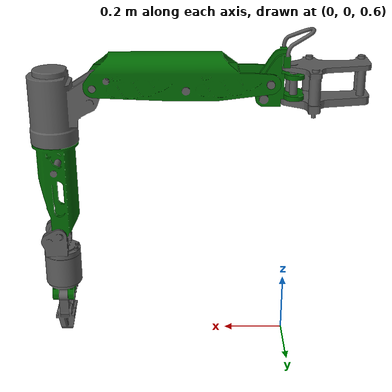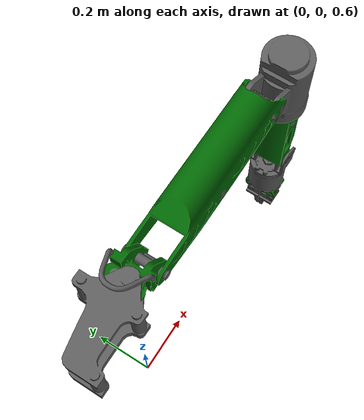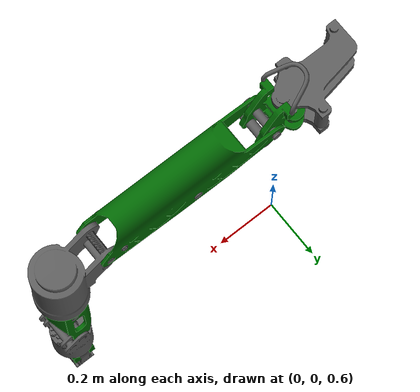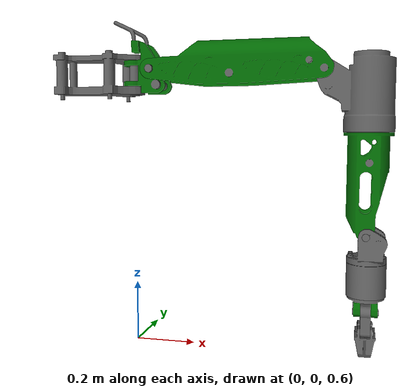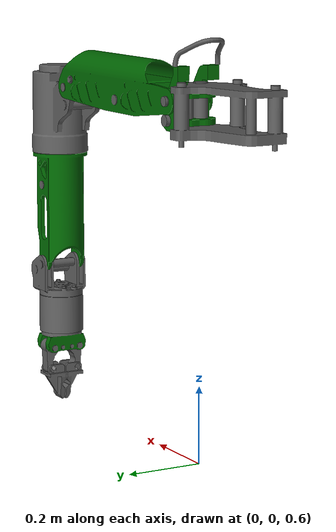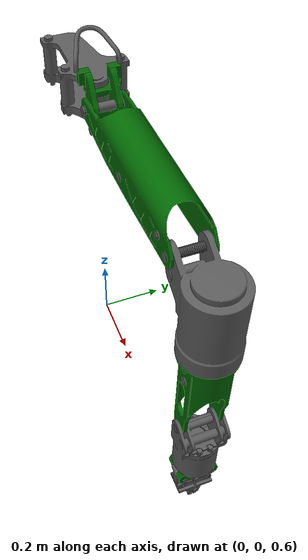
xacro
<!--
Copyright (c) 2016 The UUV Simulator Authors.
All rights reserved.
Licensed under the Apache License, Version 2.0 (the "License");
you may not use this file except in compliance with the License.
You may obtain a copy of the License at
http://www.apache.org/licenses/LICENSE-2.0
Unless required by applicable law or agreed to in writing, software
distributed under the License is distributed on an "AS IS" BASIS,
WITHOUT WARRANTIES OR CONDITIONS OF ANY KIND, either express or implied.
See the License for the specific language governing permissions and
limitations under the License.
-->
<?xml version="1.0"?>
<robot name="oberon7" xmlns:xacro="http://www.ros.org/wiki/xacro">
  <!-- Import serial arm -->
  <xacro:include filename="$(find oberon7_description)/robots/oberon7_default.xacro" />

  <link name="world"/>

  <xacro:oberon7 namespace="" parent="world">
    <origin xyz="0 0 1.5" rpy="0 0 0"/>
  </xacro:oberon7>
</robot>

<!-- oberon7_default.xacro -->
<robot name="oberon7" xmlns:xacro="http://www.ros.org/wiki/xacro">

  <!-- Import serial arm -->
  <xacro:include filename="$(find oberon7_description)/urdf/serial_arm.xacro" />
  <!-- Import Gazebo specific macros -->
  <xacro:include filename="$(find oberon7_description)/urdf/serial_arm.gazebo.xacro" />

  <xacro:macro name="oberon7" params="namespace parent *origin">
    <xacro:oberon7_serial_arm namespace="${namespace}"/>

    <joint name="${namespace}/anchor" type="revolute">
      <parent link="${parent}"/>
      <child link="${namespace}/base"/>
      <xacro:insert_block name="origin"/>
      <axis xyz="0 1 0"/>
      <limit effort="0" lower="0" upper="0" velocity="0"/>
    </joint>
  </xacro:macro>

</robot>

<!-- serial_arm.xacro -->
<robot xmlns:xacro="http://www.ros.org/wiki/xacro">
    <!-- Import arm parameters -->
    <xacro:include filename="$(find oberon7_description)/urdf/parameters/serial_arm.xacro" />

    <!-- Transmission Macro -->

    <!-- Transmission Macro -->
    <xacro:macro name="simple_transmission" params="joint">
      <transmission name="${joint}_trans">
        <type>transmission_interface/SimpleTransmission</type>
        <joint name="${joint}">
          <hardwareInterface>EffortJointInterface</hardwareInterface>
        </joint>
        <actuator name="${joint}_motor">
          <hardwareInterface>EffortJointInterface</hardwareInterface>
          <mechanicalReduction>1</mechanicalReduction>
        </actuator>
      </transmission>
    </xacro:macro>

    <xacro:macro name="oberon7_serial_arm" params="namespace">

        <!-- Ground base -->

        <link name="${namespace}/base">
            <xacro:link_box_inertial mass="${total_mass * base_volume / total_volume_bbox}"
                        width="${base_width}"
                        length="${base_length}"
                        height="${base_height}">
            <origin xyz="${base_com}" rpy="0 0 0"/>
            </xacro:link_box_inertial>

            <visual>
                <origin xyz="0 0 0" rpy="0 0 0"/>
                <geometry>
                    <mesh filename="file://$(find oberon7_description)/meshes/serial_arm/visual/Base.dae"/>
                </geometry>
            </visual>

            <collision>
                <origin xyz="0 0 0" rpy="0 0 0"/>
                <geometry>
                    <mesh filename="file://$(find oberon7_description)/meshes/serial_arm/collision/Base.stl"/>
                </geometry>
            </collision>
        </link>

        <!-- Shoulder link -->

        <link name="${namespace}/shoulder_link">
            <xacro:link_box_inertial mass="${total_mass * shoulder_link_volume / total_volume_bbox}"
                        width="${shoulder_link_width}"
                        length="${shoulder_link_length}"
                        height="${shoulder_link_height}">
                <origin xyz="${shoulder_link_com}" rpy="0 0 0"/>
            </xacro:link_box_inertial>

            <visual>
                <origin xyz="0 0 0" rpy="0 0 0"/>
                <geometry>
                    <mesh filename="file://$(find oberon7_description)/meshes/serial_arm/visual/ShoulderLink.dae"/>
                </geometry>
            </visual>

            <collision>
                <origin xyz="${shoulder_link_com}" rpy="0 0 0"/>
                <geometry>
                    <cylinder radius="${0.5 * shoulder_link_width}" length="${shoulder_link_height}" />
                </geometry>
            </collision>
        </link>

        <joint name="${namespace}/azimuth" type="revolute">
            <parent link="${namespace}/base"/>
            <child link="${namespace}/shoulder_link"/>
            <axis xyz="0 0 1"/>
            <dynamics damping="100" friction="150"/>
            <limit lower="${-60 * d2r}" upper="${60 * d2r}" velocity="0.17" effort="200"/>
        </joint>

        <xacro:simple_transmission joint="${namespace}/azimuth" />

        <!-- UPPER ARM -->

        <link name="${namespace}/upper_arm">
            <xacro:link_box_inertial mass="${total_mass * upper_arm_volume / total_volume_bbox}"
                        width="${upper_arm_width}"
                        length="${upper_arm_length}"
                        height="${upper_arm_height}">
                <origin xyz="${upper_arm_com}" rpy="0 0 0"/>
            </xacro:link_box_inertial>

            <visual>
                <origin xyz="0 0 0" rpy="0 0 0"/>
                <geometry>
                    <mesh filename="file://$(find oberon7_description)/meshes/serial_arm/visual/UpperArm.dae"/>
                </geometry>
            </visual>

            <collision>
                <origin xyz="${upper_arm_com}" rpy="0 ${0.5*pi} 0"/>
                <geometry>
                    <cylinder radius="${0.5 * upper_arm_width}" length="${upper_arm_length}"/>
                </geometry>
            </collision>
        </link>

        <joint name="${namespace}/shoulder" type="revolute">
            <parent link="${namespace}/shoulder_link"/>
            <child link="${namespace}/upper_arm"/>
            <origin xyz="0.06955 0.00015 0.01536" rpy="${0.5*pi} 0 0"/>
            <axis xyz="0 0 1"/>
            <dynamics damping="50" friction="150"/>
            <limit lower="${-90 * d2r}" upper="${90 * d2r}" velocity=".17" effort="5000"/>
        </joint>

        <xacro:simple_transmission joint="${namespace}/shoulder" />

        <!-- ELBOW LINK -->

        <link name="${namespace}/elbow_link">
            <xacro:link_box_inertial mass="${total_mass * elbow_link_volume / total_volume_bbox}"
                        width="${elbow_link_width}"
                        length="${elbow_link_length}"
                        height="${elbow_link_height}">
                <origin xyz="${elbow_link_com}" rpy="0 0 0"/>
            </xacro:link_box_inertial>

            <visual>
                <origin xyz="0 0 0" rpy="0 0 0"/>
                <geometry>
                    <mesh filename="file://$(find oberon7_description)/meshes/serial_arm/visual/ElbowLink.dae"/>
                </geometry>
            </visual>

            <collision>
                <origin xyz="${elbow_link_com}" rpy="0 ${0.5*pi} ${0.5*pi}"/>
                <geometry>
                    <cylinder radius="${0.5 * elbow_link_height}" length="${elbow_link_length}"/>
                </geometry>
            </collision>
        </link>

        <joint name="${namespace}/elbow" type="revolute">
            <parent link="${namespace}/upper_arm"/>
            <child link="${namespace}/elbow_link"/>
            <origin xyz="0.55616 -0.01229 0" rpy="0 0 0"/>
            <dynamics damping="50" friction="150"/>
            <axis xyz="0 0 1"/>
            <limit lower="${-90 * d2r}" upper="${60 * d2r}" velocity=".15" effort="300"/>
        </joint>

        <xacro:simple_transmission joint="${namespace}/elbow" />

        <!-- FOREARM -->

        <link name="${namespace}/forearm">
            <xacro:link_box_inertial mass="${total_mass * forearm_volume / total_volume_bbox}"
                        width="${forearm_width}"
                        length="${forearm_length}"
                        height="${forearm_height}">
                <origin xyz="${forearm_com}" rpy="0 0 0"/>
            </xacro:link_box_inertial>

            <visual>
                <origin xyz="0 0 0" rpy="0 0 0"/>
                <geometry>
                    <mesh filename="file://$(find oberon7_description)/meshes/serial_arm/visual/Forearm.dae"/>
                </geometry>
            </visual>

            <collision>
                <origin xyz="${forearm_com}" rpy="0 0 0"/>
                <geometry>
                    <cylinder radius="${0.5 * forearm_width}" length="${forearm_height}"/>
                </geometry>
            </collision>
        </link>

        <joint name="${namespace}/roll" type="revolute">
            <parent link="${namespace}/elbow_link"/>
            <child link="${namespace}/forearm"/>
            <origin xyz="0.1349014 -0.1936267 0" rpy="${0.5*PI} 0 0"/>
            <axis xyz="0 0 1"/>
            <dynamics damping="300" friction="1000"/>
            <limit lower="${-135 * d2r}" upper="${135 * d2r}" velocity=".25" effort="1000"/>
        </joint>

        <xacro:simple_transmission joint="${namespace}/roll" />

        <!-- WRIST 1  -->

        <link name="${namespace}/wrist_link">
            <xacro:link_box_inertial mass="${total_mass * wrist_volume / total_volume_bbox}"
                        width="${wrist_width}"
                        length="${wrist_length}"
                        height="${wrist_height}">
                <origin xyz="${wrist_com}" rpy="0 0 0"/>
            </xacro:link_box_inertial>

            <visual>
                <origin xyz="0 0 0" rpy="0 0 0"/>
                <geometry>
                    <mesh filename="file://$(find oberon7_description)/meshes/serial_arm/visual/Wrist.dae"/>
                </geometry>
            </visual>

            <collision>
                <origin xyz="${wrist_com}" rpy="0 ${0.5*pi} 0"/>
                <geometry>
                    <cylinder radius="${0.5 * wrist_height}" length="${wrist_length}"/>
                </geometry>
            </collision>
        </link>

        <joint name="${namespace}/pitch" type="revolute">
            <parent link="${namespace}/forearm"/>
            <child link="${namespace}/wrist_link"/>
            <origin xyz="0 0 0.31595760629823427" rpy="${-0.5*PI} ${-0.5*PI} 0"/>
            <axis xyz="0 0 1"/>
            <dynamics damping="10" friction="10"/>
            <limit lower="${-90 * d2r}" upper="${90 * d2r}" velocity=".3" effort="50"/>
        </joint>

        <xacro:simple_transmission joint="${namespace}/pitch" />

        <!-- Adding parallel gripper  -->
        <xacro:include filename="$(find oberon7_description)/urdf/parallel_gripper.xacro" />

        <xacro:oberon7_gazebo_macro namespace="${namespace}"/>
    </xacro:macro>
</robot>

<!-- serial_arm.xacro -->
<robot xmlns:xacro="http://www.ros.org/wiki/xacro">

  <!-- Include parallel gripper's parameters -->
  <xacro:include filename="$(find oberon7_description)/urdf/parameters/parallel_gripper.xacro" />

  <xacro:property name="PI" value="3.1415926535897931"/>
  <xacro:property name="d2r" value="0.017453293" />

  <xacro:macro name="link_box_inertial" params="mass width length height *origin">
      <inertial>
      <xacro:insert_block name="origin"/>
      <mass value="${mass}"/>
      <inertia ixx="${0.083333333 * mass * (width * width + height * height)}" ixy="0.0" ixz="0.0"
               iyy="${0.083333333 * mass * (length * length + height * height)}" iyz="0.0"
               izz="${0.083333333 * mass * (width * width + length * length)}"/>
    </inertial>
  </xacro:macro>

  <xacro:property name="base_width" value="0.198133"/>
  <xacro:property name="base_length" value="0.282087"/>
  <xacro:property name="base_height" value="0.155615"/>
  <xacro:property name="base_volume" value="${base_width * base_length * base_height}" />
  <xacro:property name="base_com" value="-0.101581 -0.001371 -0.009781"/>

  <xacro:property name="shoulder_link_width" value="0.136368"/>
  <xacro:property name="shoulder_link_length" value="0.184936"/>
  <xacro:property name="shoulder_link_height" value="0.239627"/>
  <xacro:property name="shoulder_link_volume" value="${shoulder_link_width * shoulder_link_length * shoulder_link_height}"/>
  <xacro:property name="shoulder_link_com" value="0.039670 0.005441 0.017383"/>

  <xacro:property name="upper_arm_width" value="0.141889"/>
  <xacro:property name="upper_arm_length" value="0.616809"/>
  <xacro:property name="upper_arm_height" value="0.127829"/>
  <xacro:property name="upper_arm_volume" value="${upper_arm_width * upper_arm_length * upper_arm_height}" />
  <xacro:property name="upper_arm_com" value="0.312501 0.017478 -0.000002"/>

  <xacro:property name="elbow_link_width" value="0.243672"/>
  <xacro:property name="elbow_link_length" value="0.245312"/>
  <xacro:property name="elbow_link_height" value="0.155124"/>
  <xacro:property name="elbow_link_volume" value="${elbow_link_width * elbow_link_length * elbow_link_height}" />
  <xacro:property name="elbow_link_com" value="0.125269 -0.074675 0.0"/>

  <xacro:property name="forearm_width" value="0.151455"/>
  <xacro:property name="forearm_length" value="0.151505"/>
  <xacro:property name="forearm_height" value="0.334827"/>
  <xacro:property name="forearm_volume" value="${forearm_width * forearm_length * forearm_height}" />
  <xacro:property name="forearm_com" value="0 0 ${0.5*0.31595760629823427}"/>

  <xacro:property name="wrist_width" value="0.122758"/>
  <xacro:property name="wrist_length" value="0.219204"/>
  <xacro:property name="wrist_height" value="0.130374"/>
  <xacro:property name="wrist_volume" value="${wrist_width * wrist_length * wrist_height}" />
  <xacro:property name="wrist_com" value="0.104016 0.003308 -0.000027"/>

  <!-- Inertial macros for all serial arm links  -->

  <xacro:property name="total_mass" value="54"/>
  <xacro:property name="total_volume" value="0.015564"/>
  <xacro:property name="total_volume_bbox" value="${base_volume +
                                                    shoulder_link_volume +
                                                    upper_arm_volume +
                                                    elbow_link_volume +
                                                    forearm_volume +
                                                    wrist_volume +
                                                    gripper_base_volume +
                                                    2 * finger_volume +
                                                    2 * finger_tip_volume}" />

</robot>

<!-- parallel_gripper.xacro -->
<robot xmlns:xacro="http://www.ros.org/wiki/xacro">

  <xacro:property name="gripper_effort" value="30" />
  <xacro:property name="gripper_velocity" value="0.15" />

  <xacro:property name="gripper_base_width" value="0.117427" />
  <xacro:property name="gripper_base_length" value="0.074326" />
  <xacro:property name="gripper_base_height" value="0.114298" />
  <xacro:property name="gripper_base_volume" value="${gripper_base_width * gripper_base_length * gripper_base_height}"/>
  <xacro:property name="gripper_base_com" value="0.024426 -0.000000 -0.000014" />

  <xacro:property name="finger_width" value="0.052970" />
  <xacro:property name="finger_length" value="0.098653" />
  <xacro:property name="finger_height" value="0.048524" />
  <xacro:property name="finger_volume" value="${finger_width * finger_length * finger_height}" />
  <xacro:property name="finger_com" value="0.025268 -0.001931 -0.000079" />

  <xacro:property name="finger_tip_width" value="0.050457" />
  <xacro:property name="finger_tip_length" value="0.102050" />
  <xacro:property name="finger_tip_height" value="0.063000" />
  <xacro:property name="finger_tip_volume" value="${finger_tip_width * finger_tip_length * finger_tip_height}" />
  <xacro:property name="finger_tip_com" value="0.027744 0.017278 0.0" />
</robot>

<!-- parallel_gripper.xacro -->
<robot xmlns:xacro="http://www.ros.org/wiki/xacro">

    <!-- Ground base -->

    <link name="${namespace}/end_effector">
        <xacro:link_box_inertial mass="${total_mass * gripper_base_volume / total_volume}"
                    width="${gripper_base_width}"
                    length="${gripper_base_length}"
                    height="${gripper_base_height}">
        <origin xyz="${gripper_base_com}" rpy="0 0 0"/>
        </xacro:link_box_inertial>

        <visual>
            <origin xyz="0 0 0" rpy="0 0 0"/>
            <geometry>
                <mesh filename="file://$(find oberon7_description)/meshes/parallel_gripper/visual/BaseGripper.dae"/>
            </geometry>
        </visual>

        <collision>
            <origin xyz="${gripper_base_com}" rpy="0 0 0"/>
            <geometry>
                <box size="${gripper_base_length} ${gripper_base_width} ${gripper_base_height}"/>
            </geometry>
        </collision>
    </link>

    <joint name="${namespace}/wrist" type="revolute">
      <parent link="${namespace}/wrist_link"/>
      <child link="${namespace}/end_effector"/>
       <origin xyz="0.19304 0 0" rpy="${-PI*0.5} 0 0"/>
      <axis xyz="1 0 0"/>
      <dynamics damping="10" friction="5"/>
      <limit effort="10" lower="${-2*PI}" upper="${2*PI}" velocity="${gripper_velocity}"/>
    </joint>

    <xacro:simple_transmission joint="${namespace}/wrist" />

    <!-- Finger left  -->

    <link name="${namespace}/finger_left">
        <xacro:link_box_inertial mass="${total_mass * finger_volume / total_volume}"
                    width="${finger_width}"
                    length="${finger_length}"
                    height="${finger_height}">
        <origin xyz="${finger_com}" rpy="0 0 0"/>
        </xacro:link_box_inertial>

        <visual>
            <origin xyz="0 0 0" rpy="0 0 0"/>
            <geometry>
                <mesh filename="file://$(find oberon7_description)/meshes/parallel_gripper/visual/Finger.dae"/>
            </geometry>
        </visual>

        <collision>
            <origin xyz="0 0 0" rpy="0 0 0"/>
            <geometry>
                <mesh filename="file://$(find oberon7_description)/meshes/parallel_gripper/visual/Finger.dae"/>
            </geometry>
        </collision>
    </link>

    <joint name="${namespace}/finger_left_joint" type="revolute">
        <parent link="${namespace}/end_effector"/>
        <child link="${namespace}/finger_left"/>
        <origin xyz="0.0444267 0.0391376 0" rpy="0 0 0"/>
        <axis xyz="0 0 1"/>
        <dynamics damping="5" friction="10"/>
        <limit effort="${gripper_effort}" lower="0" upper="${PI*0.3333}" velocity="${gripper_velocity}"/>
    </joint>

    <xacro:simple_transmission joint="${namespace}/finger_left_joint" />

    <!-- Finger tip left  -->

    <link name="${namespace}/finger_tip_left">
        <xacro:link_box_inertial mass="${total_mass * finger_tip_volume / total_volume}"
                    width="${finger_tip_width}"
                    length="${finger_tip_length}"
                    height="${finger_tip_height}">
        <origin xyz="${finger_tip_com}" rpy="0 0 0"/>
        </xacro:link_box_inertial>

        <visual>
            <origin xyz="0 0 0" rpy="0 0 0"/>
            <geometry>
                <mesh filename="file://$(find oberon7_description)/meshes/parallel_gripper/visual/FingerTip.dae"/>
            </geometry>
        </visual>

        <collision>
            <origin xyz="0 0 0" rpy="0 0 0"/>
            <geometry>
                <mesh filename="file://$(find oberon7_description)/meshes/parallel_gripper/visual/FingerTip.dae"/>
            </geometry>
        </collision>
    </link>

    <joint name="${namespace}/finger_tip_left_joint" type="revolute">
        <parent link="${namespace}/finger_left"/>
        <child link="${namespace}/finger_tip_left"/>
        <origin xyz="0.06431 0 0" rpy="${PI} 0 0"/>
        <axis xyz="0 0 1"/>
        <dynamics damping="5" friction="10"/>
        <limit effort="0" lower="0" upper="0" velocity="0"/>
    </joint>

    <!-- Finger right  -->

    <link name="${namespace}/finger_right">
        <xacro:link_box_inertial mass="${total_mass * finger_volume / total_volume}"
                    width="${finger_width}"
                    length="${finger_length}"
                    height="${finger_height}">
        <origin xyz="${finger_com}" rpy="0 0 0"/>
        </xacro:link_box_inertial>

        <visual>
            <origin xyz="0 0 0" rpy="${PI} 0 0"/>
            <geometry>
                <mesh filename="file://$(find oberon7_description)/meshes/parallel_gripper/visual/Finger.dae"/>
            </geometry>
        </visual>

        <collision>
            <origin xyz="0 0 0" rpy="${PI} 0 0"/>
            <geometry>
                <mesh filename="file://$(find oberon7_description)/meshes/parallel_gripper/visual/Finger.dae"/>
            </geometry>
        </collision>
    </link>

    <joint name="${namespace}/finger_right_joint" type="revolute">
        <parent link="${namespace}/end_effector"/>
        <child link="${namespace}/finger_right"/>
        <origin xyz="0.0444267 -0.0391376 0" rpy="${PI} ${PI} ${PI}"/>
        <axis xyz="0 0 -1"/>
        <dynamics damping="5" friction="10"/>
        <limit effort="${gripper_effort}" lower="0" upper="${PI*0.3333}" velocity="${gripper_velocity}"/>
    </joint>

    <xacro:simple_transmission joint="${namespace}/finger_right_joint" />

    <!-- Finger tip right  -->

    <link name="${namespace}/finger_tip_right">
        <xacro:link_box_inertial mass="${total_mass * finger_tip_volume / total_volume}"
                    width="${finger_tip_width}"
                    length="${finger_tip_length}"
                    height="${finger_tip_height}">
        <origin xyz="${finger_tip_com}" rpy="0 0 0"/>
        </xacro:link_box_inertial>

        <visual>
            <origin xyz="0 0 0" rpy="0 0 0"/>
            <geometry>
                <mesh filename="file://$(find oberon7_description)/meshes/parallel_gripper/visual/FingerTip.dae"/>
            </geometry>
        </visual>

        <collision>
            <origin xyz="0 0 0" rpy="0 0 0"/>
            <geometry>
                <mesh filename="file://$(find oberon7_description)/meshes/parallel_gripper/visual/FingerTip.dae"/>
            </geometry>
        </collision>
    </link>

    <joint name="${namespace}/finger_tip_right_joint" type="revolute">
        <parent link="${namespace}/finger_right"/>
        <child link="${namespace}/finger_tip_right"/>
        <origin xyz="0.06431 0 0" rpy="0 0 0"/>
        <axis xyz="0 0 1"/>
        <dynamics damping="5" friction="10"/>
        <limit effort="0" lower="0" upper="0" velocity="0"/>
    </joint>

</robot>
